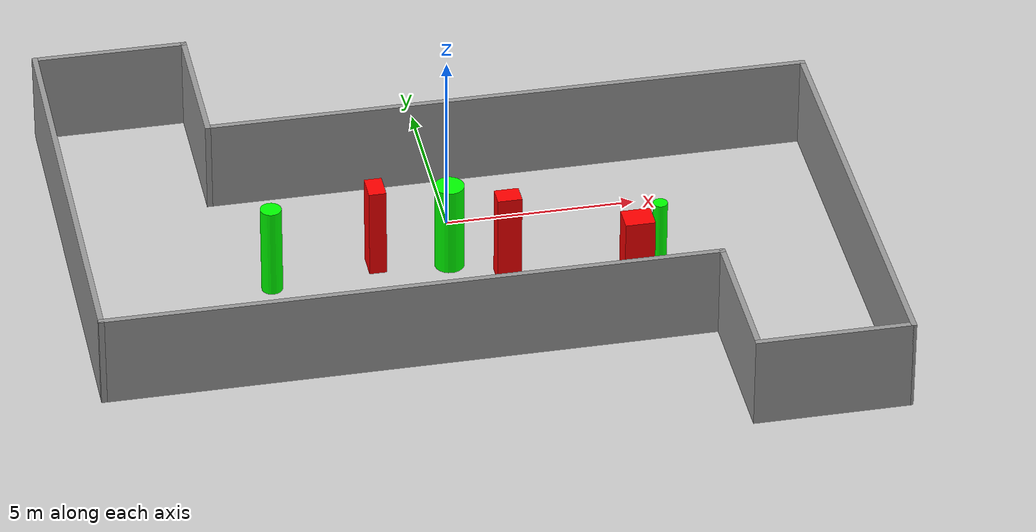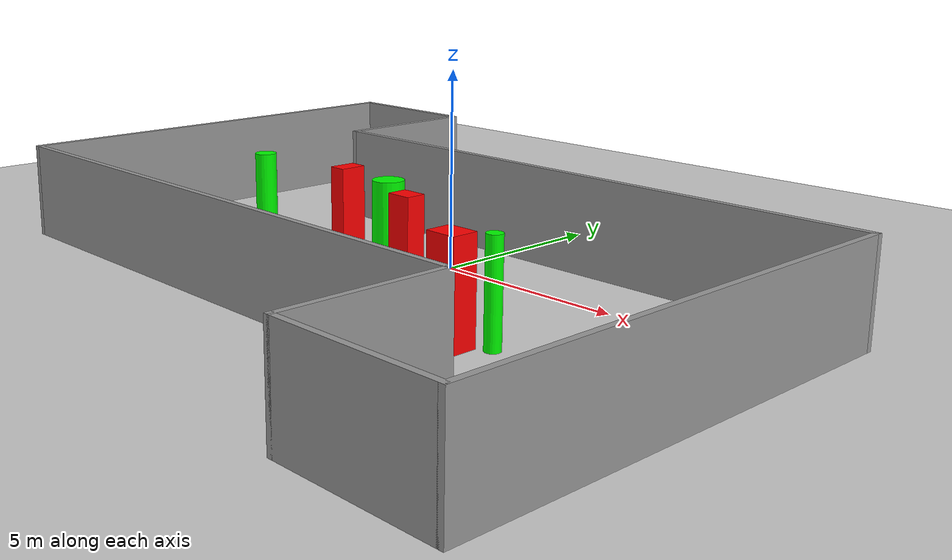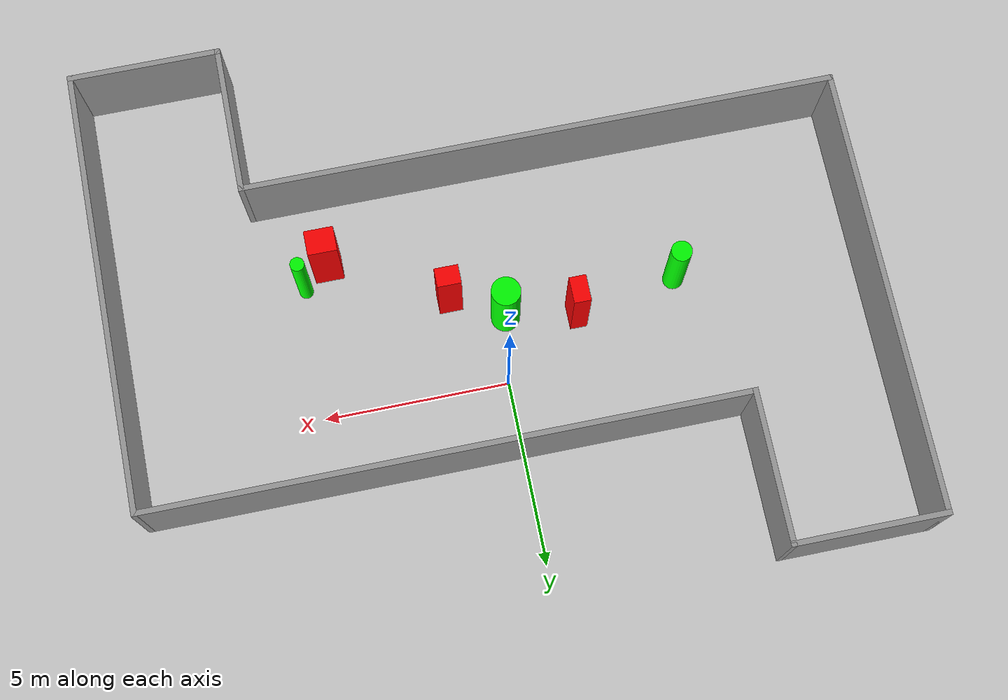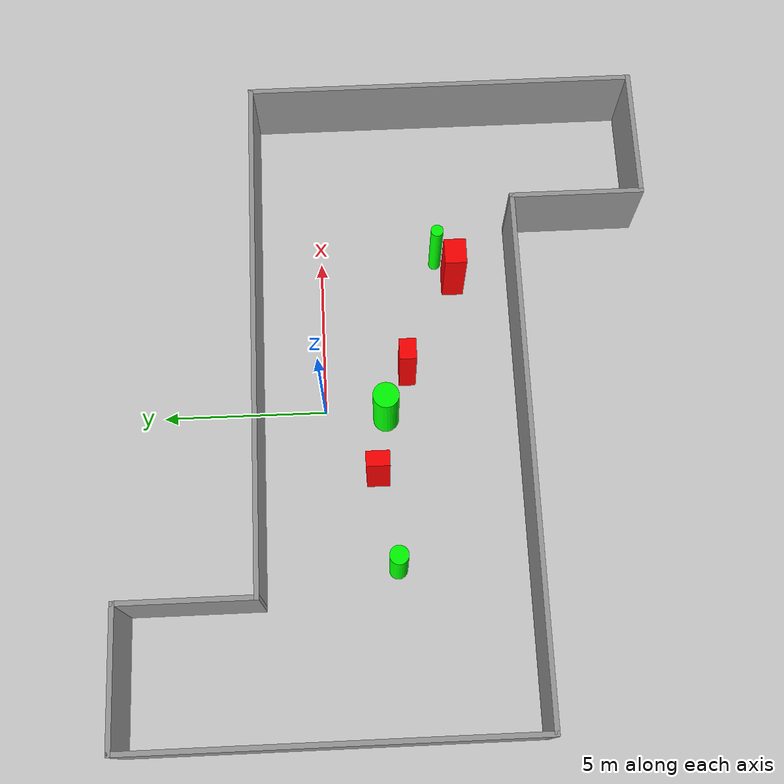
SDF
<sdf version="1.7">
 <world name="default">
  <light name="sun" type="directional">
   <pose>0 0 10 0 -0 0</pose>
   <diffuse>0.8 0.8 0.8 1</diffuse>
   <specular>0.2 0.2 0.2 1</specular>
   <attenuation>
    <range>1000</range>
    <constant>0.9</constant>
    <linear>0.01</linear>
    <quadratic>0.001</quadratic>
   </attenuation>
   <direction>-0.5 0.1 -0.9</direction>
   <spot><inner_angle>0</inner_angle><outer_angle>0</outer_angle><falloff>0</falloff></spot>
  </light>
  <model name="ground_plane">
   <static>1</static>
   <link name="link">
    <collision name="collision">
     <geometry><plane><normal>0 0 1</normal><size>100 100</size></plane></geometry>
     <surface>
      <contact><collide_bitmask>65535</collide_bitmask></contact>
      <friction><ode><mu>100</mu><mu2>50</mu2></ode></friction>
     </surface>
    </collision>
    <visual name="visual">
     <cast_shadows>0</cast_shadows>
     <geometry><plane><normal>0 0 1</normal><size>100 100</size></plane></geometry>
     <material>
      <script><uri>file://media/materials/scripts/gazebo.material</uri><name>Gazebo/Grey</name></script>
     </material>
    </visual>
   </link>
  </model>
  <gravity>0 0 -9.8</gravity>
  <magnetic_field>6e-06 2.3e-05 -4.2e-05</magnetic_field>
  <atmosphere type="adiabatic"/>
  <physics type="ode">
   <max_step_size>0.001</max_step_size>
   <real_time_factor>1</real_time_factor>
   <real_time_update_rate>1000</real_time_update_rate>
  </physics>
  <scene><ambient>0.4 0.4 0.4 1</ambient><background>0.7 0.7 0.7 1</background><shadows>1</shadows></scene>
  <spherical_coordinates>
   <surface_model>EARTH_WGS84</surface_model>
   <latitude_deg>0</latitude_deg>
   <longitude_deg>0</longitude_deg>
   <elevation>0</elevation>
   <heading_deg>0</heading_deg>
  </spherical_coordinates>
  <model name="my_base_walls">
   <link name="Wall_13">
    <collision name="Wall_13_Collision">
     <geometry><box><size>12.15 0.15 2.5</size></box></geometry>
     <pose>0 0 1.25 0 -0 0</pose>
    </collision>
    <visual name="Wall_13_Visual">
     <pose>0 0 1.25 0 -0 0</pose>
     <geometry><box><size>12.15 0.15 2.5</size></box></geometry>
     <material>
      <script><uri>file://media/materials/scripts/gazebo.material</uri><name>Gazebo/Grey</name></script>
      <ambient>1 1 1 1</ambient>
     </material>
     <meta><layer>0</layer></meta>
    </visual>
    <pose>10 -2 0 0 -0 1.5708</pose>
   </link>
   <link name="Wall_15">
    <collision name="Wall_15_Collision">
     <geometry><box><size>16.15 0.15 2.5</size></box></geometry>
     <pose>0 0 1.25 0 -0 0</pose>
    </collision>
    <visual name="Wall_15_Visual">
     <pose>0 0 1.25 0 -0 0</pose>
     <geometry><box><size>16.15 0.15 2.5</size></box></geometry>
     <material>
      <script><uri>file://media/materials/scripts/gazebo.material</uri><name>Gazebo/Grey</name></script>
      <ambient>1 1 1 1</ambient>
     </material>
     <meta><layer>0</layer></meta>
    </visual>
    <pose>2 4 0 0 -0 3.14159</pose>
   </link>
   <link name="Wall_17">
    <collision name="Wall_17_Collision">
     <geometry><box><size>4.15 0.15 2.5</size></box></geometry>
     <pose>0 0 1.25 0 -0 0</pose>
    </collision>
    <visual name="Wall_17_Visual">
     <pose>0 0 1.25 0 -0 0</pose>
     <geometry><box><size>4.15 0.15 2.5</size></box></geometry>
     <material>
      <script><uri>file://media/materials/scripts/gazebo.material</uri><name>Gazebo/Grey</name></script>
      <ambient>1 1 1 1</ambient>
     </material>
     <meta><layer>0</layer></meta>
    </visual>
    <pose>6 -6 0 0 -0 -1.5708</pose>
   </link>
   <link name="Wall_19">
    <collision name="Wall_19_Collision">
     <geometry><box><size>12.15 0.15 2.5</size></box></geometry>
     <pose>0 0 1.25 0 -0 0</pose>
    </collision>
    <visual name="Wall_19_Visual">
     <pose>0 0 1.25 0 -0 0</pose>
     <geometry><box><size>12.15 0.15 2.5</size></box></geometry>
     <material>
      <script><uri>file://media/materials/scripts/gazebo.material</uri><name>Gazebo/Grey</name></script>
      <ambient>1 1 1 1</ambient>
     </material>
     <meta><layer>0</layer></meta>
    </visual>
    <pose>-10 2 0 0 -0 1.5708</pose>
   </link>
   <link name="Wall_21">
    <collision name="Wall_21_Collision">
     <geometry><box><size>4.15 0.15 2.5</size></box></geometry>
     <pose>0 0 1.25 0 -0 0</pose>
    </collision>
    <visual name="Wall_21_Visual">
     <pose>0 0 1.25 0 -0 0</pose>
     <geometry><box><size>4.15 0.15 2.5</size></box></geometry>
     <material>
      <script><uri>file://media/materials/scripts/gazebo.material</uri><name>Gazebo/Grey</name></script>
      <ambient>1 1 1 1</ambient>
     </material>
     <meta><layer>0</layer></meta>
    </visual>
    <pose>-8 8 0 0 -0 0</pose>
   </link>
   <link name="Wall_23">
    <collision name="Wall_23_Collision">
     <geometry><box><size>4.15 0.15 2.5</size></box></geometry>
     <pose>0 0 1.25 0 -0 0</pose>
    </collision>
    <visual name="Wall_23_Visual">
     <pose>0 0 1.25 0 -0 0</pose>
     <geometry><box><size>4.15 0.15 2.5</size></box></geometry>
     <material>
      <script><uri>file://media/materials/scripts/gazebo.material</uri><name>Gazebo/Grey</name></script>
      <ambient>1 1 1 1</ambient>
     </material>
     <meta><layer>0</layer></meta>
    </visual>
    <pose>-6 6 0 0 -0 -1.5708</pose>
   </link>
   <link name="Wall_25">
    <collision name="Wall_25_Collision">
     <geometry><box><size>4.15 0.15 2.5</size></box></geometry>
     <pose>0 0 1.25 0 -0 0</pose>
    </collision>
    <visual name="Wall_25_Visual">
     <pose>0 0 1.25 0 -0 0</pose>
     <geometry><box><size>4.15 0.15 2.5</size></box></geometry>
     <material>
      <script><uri>file://media/materials/scripts/gazebo.material</uri><name>Gazebo/Grey</name></script>
      <ambient>1 1 1 1</ambient>
     </material>
     <meta><layer>0</layer></meta>
    </visual>
    <pose>8 -8 0 0 -0 0</pose>
   </link>
   <link name="Wall_9">
    <collision name="Wall_9_Collision">
     <geometry><box><size>16.15 0.15 2.5</size></box></geometry>
     <pose>0 0 1.25 0 -0 0</pose>
    </collision>
    <visual name="Wall_9_Visual">
     <pose>0 0 1.25 0 -0 0</pose>
     <geometry><box><size>16.15 0.15 2.5</size></box></geometry>
     <material>
      <script><uri>file://media/materials/scripts/gazebo.material</uri><name>Gazebo/Grey</name></script>
      <ambient>1 1 1 1</ambient>
     </material>
     <meta><layer>0</layer></meta>
    </visual>
    <pose>-2 -4 0 0 -0 3.14159</pose>
   </link>
   <static>1</static>
   <pose>-0 -2 0 0 -0 0</pose>
  </model>
  <model name="cylinder1">
   <static>1</static>
   <link name="link">
    <inertial>
     <mass>1</mass>
     <inertia><ixx>0.5</ixx><ixy>0</ixy><ixz>0</ixz><iyy>0.5</iyy><iyz>0</iyz><izz>1</izz></inertia>
    </inertial>
    <collision name="collision">
     <geometry><cylinder><radius>0.3925599415940492</radius><length>2.5</length></cylinder></geometry>
    </collision>
    <visual name="visual">
     <geometry><cylinder><radius>0.3925599415940492</radius><length>2.5</length></cylinder></geometry>
     <material>
      <ambient>0 1 0 1</ambient>
      <diffuse>0 1 0 1</diffuse>
      <specular>0.1 0.1 0.1 1</specular>
      <emissive>0 0 0 0</emissive>
     </material>
    </visual>
   </link>
   <pose>-0.28625086965103996 -1.8453054219225038 1.25 0 0 0</pose>
  </model>
  <model name="cylinder2">
   <static>1</static>
   <link name="link">
    <inertial>
     <mass>1</mass>
     <inertia><ixx>0.5</ixx><ixy>0</ixy><ixz>0</ixz><iyy>0.5</iyy><iyz>0</iyz><izz>1</izz></inertia>
    </inertial>
    <collision name="collision">
     <geometry><cylinder><radius>0.2805577883091317</radius><length>2.5</length></cylinder></geometry>
    </collision>
    <visual name="visual">
     <geometry><cylinder><radius>0.2805577883091317</radius><length>2.5</length></cylinder></geometry>
     <material>
      <ambient>0 1 0 1</ambient>
      <diffuse>0 1 0 1</diffuse>
      <specular>0.1 0.1 0.1 1</specular>
      <emissive>0 0 0 0</emissive>
     </material>
    </visual>
   </link>
   <pose>-4.999364510814409 -2.010076671841176 1.25 0 0 0</pose>
  </model>
  <model name="cylinder3">
   <static>1</static>
   <link name="link">
    <inertial>
     <mass>1</mass>
     <inertia><ixx>0.5</ixx><ixy>0</ixy><ixz>0</ixz><iyy>0.5</iyy><iyz>0</iyz><izz>1</izz></inertia>
    </inertial>
    <collision name="collision">
     <geometry><cylinder><radius>0.19102751482254507</radius><length>2.5</length></cylinder></geometry>
    </collision>
    <visual name="visual">
     <geometry><cylinder><radius>0.19102751482254507</radius><length>2.5</length></cylinder></geometry>
     <material>
      <ambient>0 1 0 1</ambient>
      <diffuse>0 1 0 1</diffuse>
      <specular>0.1 0.1 0.1 1</specular>
      <emissive>0 0 0 0</emissive>
     </material>
    </visual>
   </link>
   <pose>4.901390613676115 -3.636379657073779 1.25 0 0 0</pose>
  </model>
  <model name="box1">
   <static>1</static>
   <link name="link">
    <inertial>
     <mass>1</mass>
     <inertia><ixx>0.083</ixx><ixy>0</ixy><ixz>0</ixz><iyy>0.083</iyy><iyz>0</iyz><izz>0.083</izz></inertia>
    </inertial>
    <collision name="collision">
     <geometry><box><size>0.6437930982025444 0.5124871255408783 2.5</size></box></geometry>
    </collision>
    <visual name="visual">
     <geometry><box><size>0.6437930982025444 0.5124871255408783 2.5</size></box></geometry>
     <material>
      <ambient>1 0 0 1</ambient>
      <diffuse>1 0 0 1</diffuse>
      <specular>0.1 0.1 0.1 1</specular>
      <emissive>0 0 0 0</emissive>
     </material>
    </visual>
    <sensor name="my_contact" type="contact">
     <contact><collision>box_collision</collision><topic>__default_topic__</topic></contact>
    </sensor>
   </link>
   <pose>1.1189985542960166 -2.553336304959309 1.25 0 0 0</pose>
  </model>
  <model name="box2">
   <static>1</static>
   <link name="link">
    <inertial>
     <mass>1</mass>
     <inertia><ixx>0.083</ixx><ixy>0</ixy><ixz>0</ixz><iyy>0.083</iyy><iyz>0</iyz><izz>0.083</izz></inertia>
    </inertial>
    <collision name="collision">
     <geometry><box><size>0.7862556490333572 0.6675365570857594 2.5</size></box></geometry>
    </collision>
    <visual name="visual">
     <geometry><box><size>0.7862556490333572 0.6675365570857594 2.5</size></box></geometry>
     <material>
      <ambient>1 0 0 1</ambient>
      <diffuse>1 0 0 1</diffuse>
      <specular>0.1 0.1 0.1 1</specular>
      <emissive>0 0 0 0</emissive>
     </material>
    </visual>
    <sensor name="my_contact" type="contact">
     <contact><collision>box_collision</collision><topic>__default_topic__</topic></contact>
    </sensor>
   </link>
   <pose>4.201635992260925 -4.151133357214787 1.25 0 0 0</pose>
  </model>
  <model name="box3">
   <static>1</static>
   <link name="link">
    <inertial>
     <mass>1</mass>
     <inertia><ixx>0.083</ixx><ixy>0</ixy><ixz>0</ixz><iyy>0.083</iyy><iyz>0</iyz><izz>0.083</izz></inertia>
    </inertial>
    <collision name="collision">
     <geometry><box><size>0.4597761728299464 0.7052314858119517 2.5</size></box></geometry>
    </collision>
    <visual name="visual">
     <geometry><box><size>0.4597761728299464 0.7052314858119517 2.5</size></box></geometry>
     <material>
      <ambient>1 0 0 1</ambient>
      <diffuse>1 0 0 1</diffuse>
      <specular>0.1 0.1 0.1 1</specular>
      <emissive>0 0 0 0</emissive>
     </material>
    </visual>
    <sensor name="my_contact" type="contact">
     <contact><collision>box_collision</collision><topic>__default_topic__</topic></contact>
    </sensor>
   </link>
   <pose>-2.1820426093344283 -1.5279664686865688 1.25 0 0 0</pose>
  </model>
 </world>
</sdf>
